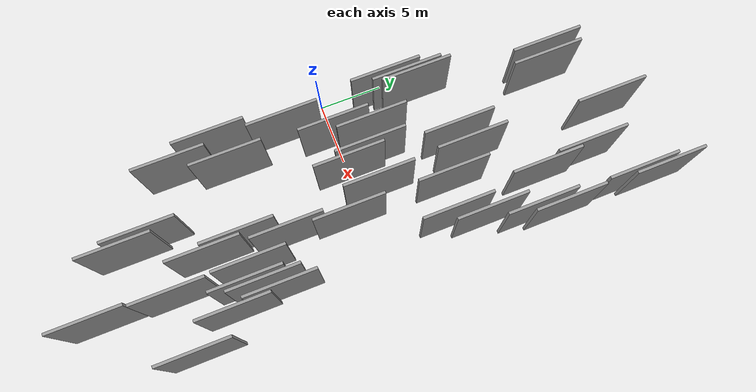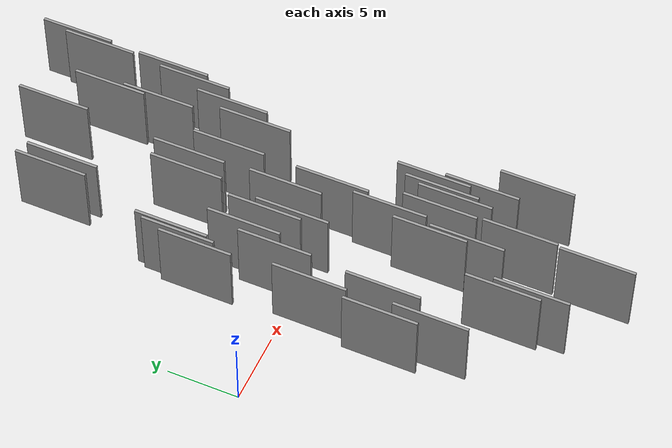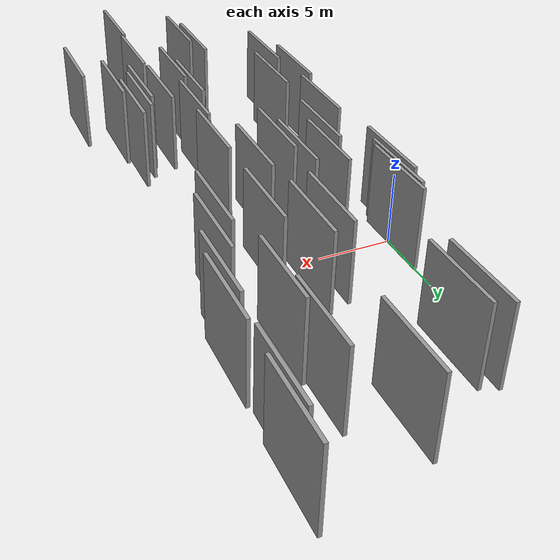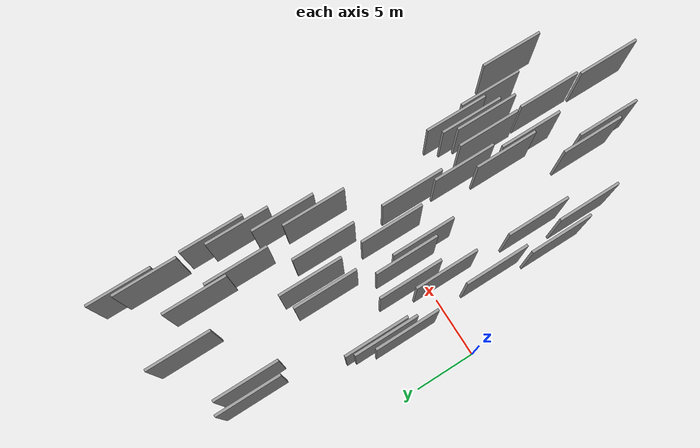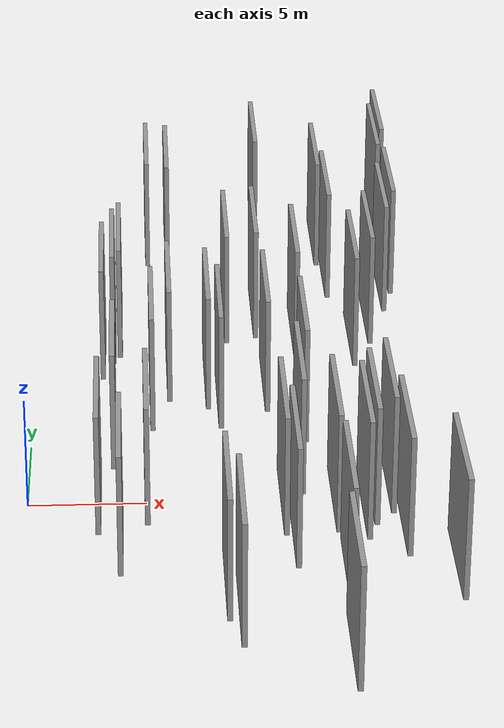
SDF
<sdf version="1.6">
 <world name="default">
  <scene>
   <sky><clouds><speed>12</speed></clouds></sky>
   <ambient>0.4 0.4 0.4 1</ambient>
   <background>0.7 0.7 0.7 1</background>
   <shadows>1</shadows>
  </scene>
  <gravity>0 0 -9.8066</gravity>
  <magnetic_field>6e-06 2.3e-05 -4.2e-05</magnetic_field>
  <physics default="0" name="default_physics" type="ode">
   <ode>
    <solver>
     <type>quick</type>
     <iters>10</iters>
     <sor>1.0</sor>
     <use_dynamic_moi_rescaling>0</use_dynamic_moi_rescaling>
    </solver>
    <constraints>
     <cfm>0</cfm>
     <erp>0.2</erp>
     <contact_max_correcting_vel>100</contact_max_correcting_vel>
     <contact_surface_layer>0.001</contact_surface_layer>
    </constraints>
   </ode>
   <max_step_size>0.004</max_step_size>
   <real_time_factor>1</real_time_factor>
   <real_time_update_rate>250</real_time_update_rate>
  </physics>
  <light name="sun" type="directional">
   <pose>0 0 10 0 0 0</pose>
   <diffuse>0.8 0.8 0.8 1</diffuse>
   <specular>0.2 0.2 0.2 1</specular>
   <attenuation>
    <range>1000</range>
    <constant>0.9</constant>
    <linear>0.01</linear>
    <quadratic>0.001</quadratic>
   </attenuation>
   <direction>-0.5 0.1 -0.9</direction>
  </light>
  <model name="grey_wall_1">
   <static>1</static>
   <pose>5.2941 -0.2255 5.0 0.000000 0.000000 1.570796</pose>
   <link name="link">
    <pose>0 0 2.50 0 0 0</pose>
    <collision name="collision"><geometry><box><size>5.00 0.2 5.00</size></box></geometry></collision>
    <visual name="visual">
     <cast_shadows>0</cast_shadows>
     <geometry><box><size>5.00 0.2 5.00</size></box></geometry>
     <material>
      <script>
       <uri>model://grey_wall/materials/scripts</uri>
       <uri>model://grey_wall/materials/textures</uri>
       <name>vrc/grey_wall</name>
      </script>
     </material>
    </visual>
   </link>
  </model>
  <model name="grey_wall_2">
   <static>1</static>
   <pose>13.7056 -7.9675 5.0 0.000000 0.000000 1.570796</pose>
   <link name="link">
    <pose>0 0 2.50 0 0 0</pose>
    <collision name="collision"><geometry><box><size>5.00 0.2 5.00</size></box></geometry></collision>
    <visual name="visual">
     <cast_shadows>0</cast_shadows>
     <geometry><box><size>5.00 0.2 5.00</size></box></geometry>
     <material>
      <script>
       <uri>model://grey_wall/materials/scripts</uri>
       <uri>model://grey_wall/materials/textures</uri>
       <name>vrc/grey_wall</name>
      </script>
     </material>
    </visual>
   </link>
  </model>
  <model name="grey_wall_3">
   <static>1</static>
   <pose>14.7441 7.1923 5.0 0.000000 0.000000 1.570796</pose>
   <link name="link">
    <pose>0 0 2.50 0 0 0</pose>
    <collision name="collision"><geometry><box><size>5.00 0.2 5.00</size></box></geometry></collision>
    <visual name="visual">
     <cast_shadows>0</cast_shadows>
     <geometry><box><size>5.00 0.2 5.00</size></box></geometry>
     <material>
      <script>
       <uri>model://grey_wall/materials/scripts</uri>
       <uri>model://grey_wall/materials/textures</uri>
       <name>vrc/grey_wall</name>
      </script>
     </material>
    </visual>
   </link>
  </model>
  <model name="grey_wall_4">
   <static>1</static>
   <pose>7.5985 1.5305 5.0 0.000000 0.000000 1.570796</pose>
   <link name="link">
    <pose>0 0 2.50 0 0 0</pose>
    <collision name="collision"><geometry><box><size>5.00 0.2 5.00</size></box></geometry></collision>
    <visual name="visual">
     <cast_shadows>0</cast_shadows>
     <geometry><box><size>5.00 0.2 5.00</size></box></geometry>
     <material>
      <script>
       <uri>model://grey_wall/materials/scripts</uri>
       <uri>model://grey_wall/materials/textures</uri>
       <name>vrc/grey_wall</name>
      </script>
     </material>
    </visual>
   </link>
  </model>
  <model name="grey_wall_5">
   <static>1</static>
   <pose>14.7294 -10.2809 5.0 0.000000 0.000000 1.570796</pose>
   <link name="link">
    <pose>0 0 2.50 0 0 0</pose>
    <collision name="collision"><geometry><box><size>5.00 0.2 5.00</size></box></geometry></collision>
    <visual name="visual">
     <cast_shadows>0</cast_shadows>
     <geometry><box><size>5.00 0.2 5.00</size></box></geometry>
     <material>
      <script>
       <uri>model://grey_wall/materials/scripts</uri>
       <uri>model://grey_wall/materials/textures</uri>
       <name>vrc/grey_wall</name>
      </script>
     </material>
    </visual>
   </link>
  </model>
  <model name="grey_wall_6">
   <static>1</static>
   <pose>3.2728 4.2991 5.0 0.000000 0.000000 1.570796</pose>
   <link name="link">
    <pose>0 0 2.50 0 0 0</pose>
    <collision name="collision"><geometry><box><size>5.00 0.2 5.00</size></box></geometry></collision>
    <visual name="visual">
     <cast_shadows>0</cast_shadows>
     <geometry><box><size>5.00 0.2 5.00</size></box></geometry>
     <material>
      <script>
       <uri>model://grey_wall/materials/scripts</uri>
       <uri>model://grey_wall/materials/textures</uri>
       <name>vrc/grey_wall</name>
      </script>
     </material>
    </visual>
   </link>
  </model>
  <model name="grey_wall_7">
   <static>1</static>
   <pose>10.5431 -10.9460 5.0 0.000000 0.000000 1.570796</pose>
   <link name="link">
    <pose>0 0 2.50 0 0 0</pose>
    <collision name="collision"><geometry><box><size>5.00 0.2 5.00</size></box></geometry></collision>
    <visual name="visual">
     <cast_shadows>0</cast_shadows>
     <geometry><box><size>5.00 0.2 5.00</size></box></geometry>
     <material>
      <script>
       <uri>model://grey_wall/materials/scripts</uri>
       <uri>model://grey_wall/materials/textures</uri>
       <name>vrc/grey_wall</name>
      </script>
     </material>
    </visual>
   </link>
  </model>
  <model name="grey_wall_8">
   <static>1</static>
   <pose>15.8792 17.4398 5.0 0.000000 0.000000 1.570796</pose>
   <link name="link">
    <pose>0 0 2.50 0 0 0</pose>
    <collision name="collision"><geometry><box><size>5.00 0.2 5.00</size></box></geometry></collision>
    <visual name="visual">
     <cast_shadows>0</cast_shadows>
     <geometry><box><size>5.00 0.2 5.00</size></box></geometry>
     <material>
      <script>
       <uri>model://grey_wall/materials/scripts</uri>
       <uri>model://grey_wall/materials/textures</uri>
       <name>vrc/grey_wall</name>
      </script>
     </material>
    </visual>
   </link>
  </model>
  <model name="grey_wall_9">
   <static>1</static>
   <pose>9.8408 7.9051 5.0 0.000000 0.000000 1.570796</pose>
   <link name="link">
    <pose>0 0 2.50 0 0 0</pose>
    <collision name="collision"><geometry><box><size>5.00 0.2 5.00</size></box></geometry></collision>
    <visual name="visual">
     <cast_shadows>0</cast_shadows>
     <geometry><box><size>5.00 0.2 5.00</size></box></geometry>
     <material>
      <script>
       <uri>model://grey_wall/materials/scripts</uri>
       <uri>model://grey_wall/materials/textures</uri>
       <name>vrc/grey_wall</name>
      </script>
     </material>
    </visual>
   </link>
  </model>
  <model name="grey_wall_10">
   <static>1</static>
   <pose>10.2322 -8.5907 5.0 0.000000 0.000000 1.570796</pose>
   <link name="link">
    <pose>0 0 2.50 0 0 0</pose>
    <collision name="collision"><geometry><box><size>5.00 0.2 5.00</size></box></geometry></collision>
    <visual name="visual">
     <cast_shadows>0</cast_shadows>
     <geometry><box><size>5.00 0.2 5.00</size></box></geometry>
     <material>
      <script>
       <uri>model://grey_wall/materials/scripts</uri>
       <uri>model://grey_wall/materials/textures</uri>
       <name>vrc/grey_wall</name>
      </script>
     </material>
    </visual>
   </link>
  </model>
  <model name="grey_wall_11">
   <static>1</static>
   <pose>3.1323 -8.2820 5.0 0.000000 0.000000 1.570796</pose>
   <link name="link">
    <pose>0 0 2.50 0 0 0</pose>
    <collision name="collision"><geometry><box><size>5.00 0.2 5.00</size></box></geometry></collision>
    <visual name="visual">
     <cast_shadows>0</cast_shadows>
     <geometry><box><size>5.00 0.2 5.00</size></box></geometry>
     <material>
      <script>
       <uri>model://grey_wall/materials/scripts</uri>
       <uri>model://grey_wall/materials/textures</uri>
       <name>vrc/grey_wall</name>
      </script>
     </material>
    </visual>
   </link>
  </model>
  <model name="grey_wall_12">
   <static>1</static>
   <pose>12.3308 -13.7963 5.0 0.000000 0.000000 1.570796</pose>
   <link name="link">
    <pose>0 0 2.50 0 0 0</pose>
    <collision name="collision"><geometry><box><size>5.00 0.2 5.00</size></box></geometry></collision>
    <visual name="visual">
     <cast_shadows>0</cast_shadows>
     <geometry><box><size>5.00 0.2 5.00</size></box></geometry>
     <material>
      <script>
       <uri>model://grey_wall/materials/scripts</uri>
       <uri>model://grey_wall/materials/textures</uri>
       <name>vrc/grey_wall</name>
      </script>
     </material>
    </visual>
   </link>
  </model>
  <model name="grey_wall_13">
   <static>1</static>
   <pose>6.1581 15.1049 5.0 0.000000 0.000000 1.570796</pose>
   <link name="link">
    <pose>0 0 2.50 0 0 0</pose>
    <collision name="collision"><geometry><box><size>5.00 0.2 5.00</size></box></geometry></collision>
    <visual name="visual">
     <cast_shadows>0</cast_shadows>
     <geometry><box><size>5.00 0.2 5.00</size></box></geometry>
     <material>
      <script>
       <uri>model://grey_wall/materials/scripts</uri>
       <uri>model://grey_wall/materials/textures</uri>
       <name>vrc/grey_wall</name>
      </script>
     </material>
    </visual>
   </link>
  </model>
  <model name="grey_wall_14">
   <static>1</static>
   <pose>11.4802 5.8726 5.0 0.000000 0.000000 1.570796</pose>
   <link name="link">
    <pose>0 0 2.50 0 0 0</pose>
    <collision name="collision"><geometry><box><size>5.00 0.2 5.00</size></box></geometry></collision>
    <visual name="visual">
     <cast_shadows>0</cast_shadows>
     <geometry><box><size>5.00 0.2 5.00</size></box></geometry>
     <material>
      <script>
       <uri>model://grey_wall/materials/scripts</uri>
       <uri>model://grey_wall/materials/textures</uri>
       <name>vrc/grey_wall</name>
      </script>
     </material>
    </visual>
   </link>
  </model>
  <model name="grey_wall_15">
   <static>1</static>
   <pose>3.9686 -11.2582 5.0 0.000000 0.000000 1.570796</pose>
   <link name="link">
    <pose>0 0 2.50 0 0 0</pose>
    <collision name="collision"><geometry><box><size>5.00 0.2 5.00</size></box></geometry></collision>
    <visual name="visual">
     <cast_shadows>0</cast_shadows>
     <geometry><box><size>5.00 0.2 5.00</size></box></geometry>
     <material>
      <script>
       <uri>model://grey_wall/materials/scripts</uri>
       <uri>model://grey_wall/materials/textures</uri>
       <name>vrc/grey_wall</name>
      </script>
     </material>
    </visual>
   </link>
  </model>
  <model name="grey_wall_16">
   <static>1</static>
   <pose>13.9199 5.1631 5.0 0.000000 0.000000 1.570796</pose>
   <link name="link">
    <pose>0 0 2.50 0 0 0</pose>
    <collision name="collision"><geometry><box><size>5.00 0.2 5.00</size></box></geometry></collision>
    <visual name="visual">
     <cast_shadows>0</cast_shadows>
     <geometry><box><size>5.00 0.2 5.00</size></box></geometry>
     <material>
      <script>
       <uri>model://grey_wall/materials/scripts</uri>
       <uri>model://grey_wall/materials/textures</uri>
       <name>vrc/grey_wall</name>
      </script>
     </material>
    </visual>
   </link>
  </model>
  <model name="grey_wall_17">
   <static>1</static>
   <pose>3.9886 6.2887 5.0 0.000000 0.000000 1.570796</pose>
   <link name="link">
    <pose>0 0 2.50 0 0 0</pose>
    <collision name="collision"><geometry><box><size>5.00 0.2 5.00</size></box></geometry></collision>
    <visual name="visual">
     <cast_shadows>0</cast_shadows>
     <geometry><box><size>5.00 0.2 5.00</size></box></geometry>
     <material>
      <script>
       <uri>model://grey_wall/materials/scripts</uri>
       <uri>model://grey_wall/materials/textures</uri>
       <name>vrc/grey_wall</name>
      </script>
     </material>
    </visual>
   </link>
  </model>
  <model name="grey_wall_18">
   <static>1</static>
   <pose>10.2752 17.9012 5.0 0.000000 0.000000 1.570796</pose>
   <link name="link">
    <pose>0 0 2.50 0 0 0</pose>
    <collision name="collision"><geometry><box><size>5.00 0.2 5.00</size></box></geometry></collision>
    <visual name="visual">
     <cast_shadows>0</cast_shadows>
     <geometry><box><size>5.00 0.2 5.00</size></box></geometry>
     <material>
      <script>
       <uri>model://grey_wall/materials/scripts</uri>
       <uri>model://grey_wall/materials/textures</uri>
       <name>vrc/grey_wall</name>
      </script>
     </material>
    </visual>
   </link>
  </model>
  <model name="grey_wall_19">
   <static>1</static>
   <pose>8.5793 7.4899 5.0 0.000000 0.000000 1.570796</pose>
   <link name="link">
    <pose>0 0 2.50 0 0 0</pose>
    <collision name="collision"><geometry><box><size>5.00 0.2 5.00</size></box></geometry></collision>
    <visual name="visual">
     <cast_shadows>0</cast_shadows>
     <geometry><box><size>5.00 0.2 5.00</size></box></geometry>
     <material>
      <script>
       <uri>model://grey_wall/materials/scripts</uri>
       <uri>model://grey_wall/materials/textures</uri>
       <name>vrc/grey_wall</name>
      </script>
     </material>
    </visual>
   </link>
  </model>
  <model name="grey_wall_20">
   <static>1</static>
   <pose>3.7101 5.6964 5.0 0.000000 0.000000 1.570796</pose>
   <link name="link">
    <pose>0 0 2.50 0 0 0</pose>
    <collision name="collision"><geometry><box><size>5.00 0.2 5.00</size></box></geometry></collision>
    <visual name="visual">
     <cast_shadows>0</cast_shadows>
     <geometry><box><size>5.00 0.2 5.00</size></box></geometry>
     <material>
      <script>
       <uri>model://grey_wall/materials/scripts</uri>
       <uri>model://grey_wall/materials/textures</uri>
       <name>vrc/grey_wall</name>
      </script>
     </material>
    </visual>
   </link>
  </model>
  <model name="grey_wall_21">
   <static>1</static>
   <pose>10.0108 1.2036 5.0 0.000000 0.000000 1.570796</pose>
   <link name="link">
    <pose>0 0 2.50 0 0 0</pose>
    <collision name="collision"><geometry><box><size>5.00 0.2 5.00</size></box></geometry></collision>
    <visual name="visual">
     <cast_shadows>0</cast_shadows>
     <geometry><box><size>5.00 0.2 5.00</size></box></geometry>
     <material>
      <script>
       <uri>model://grey_wall/materials/scripts</uri>
       <uri>model://grey_wall/materials/textures</uri>
       <name>vrc/grey_wall</name>
      </script>
     </material>
    </visual>
   </link>
  </model>
  <model name="grey_wall_22">
   <static>1</static>
   <pose>13.3355 -9.0173 5.0 0.000000 0.000000 1.570796</pose>
   <link name="link">
    <pose>0 0 2.50 0 0 0</pose>
    <collision name="collision"><geometry><box><size>5.00 0.2 5.00</size></box></geometry></collision>
    <visual name="visual">
     <cast_shadows>0</cast_shadows>
     <geometry><box><size>5.00 0.2 5.00</size></box></geometry>
     <material>
      <script>
       <uri>model://grey_wall/materials/scripts</uri>
       <uri>model://grey_wall/materials/textures</uri>
       <name>vrc/grey_wall</name>
      </script>
     </material>
    </visual>
   </link>
  </model>
  <model name="grey_wall_23">
   <static>1</static>
   <pose>16.4413 -13.3517 5.0 0.000000 0.000000 1.570796</pose>
   <link name="link">
    <pose>0 0 2.50 0 0 0</pose>
    <collision name="collision"><geometry><box><size>5.00 0.2 5.00</size></box></geometry></collision>
    <visual name="visual">
     <cast_shadows>0</cast_shadows>
     <geometry><box><size>5.00 0.2 5.00</size></box></geometry>
     <material>
      <script>
       <uri>model://grey_wall/materials/scripts</uri>
       <uri>model://grey_wall/materials/textures</uri>
       <name>vrc/grey_wall</name>
      </script>
     </material>
    </visual>
   </link>
  </model>
  <model name="grey_wall_24">
   <static>1</static>
   <pose>8.3003 -16.1279 5.0 0.000000 0.000000 1.570796</pose>
   <link name="link">
    <pose>0 0 2.50 0 0 0</pose>
    <collision name="collision"><geometry><box><size>5.00 0.2 5.00</size></box></geometry></collision>
    <visual name="visual">
     <cast_shadows>0</cast_shadows>
     <geometry><box><size>5.00 0.2 5.00</size></box></geometry>
     <material>
      <script>
       <uri>model://grey_wall/materials/scripts</uri>
       <uri>model://grey_wall/materials/textures</uri>
       <name>vrc/grey_wall</name>
      </script>
     </material>
    </visual>
   </link>
  </model>
  <model name="grey_wall_25">
   <static>1</static>
   <pose>16.0839 12.1166 5.0 0.000000 0.000000 1.570796</pose>
   <link name="link">
    <pose>0 0 2.50 0 0 0</pose>
    <collision name="collision"><geometry><box><size>5.00 0.2 5.00</size></box></geometry></collision>
    <visual name="visual">
     <cast_shadows>0</cast_shadows>
     <geometry><box><size>5.00 0.2 5.00</size></box></geometry>
     <material>
      <script>
       <uri>model://grey_wall/materials/scripts</uri>
       <uri>model://grey_wall/materials/textures</uri>
       <name>vrc/grey_wall</name>
      </script>
     </material>
    </visual>
   </link>
  </model>
  <model name="grey_wall_26">
   <static>1</static>
   <pose>13.2229 11.7885 5.0 0.000000 0.000000 1.570796</pose>
   <link name="link">
    <pose>0 0 2.50 0 0 0</pose>
    <collision name="collision"><geometry><box><size>5.00 0.2 5.00</size></box></geometry></collision>
    <visual name="visual">
     <cast_shadows>0</cast_shadows>
     <geometry><box><size>5.00 0.2 5.00</size></box></geometry>
     <material>
      <script>
       <uri>model://grey_wall/materials/scripts</uri>
       <uri>model://grey_wall/materials/textures</uri>
       <name>vrc/grey_wall</name>
      </script>
     </material>
    </visual>
   </link>
  </model>
  <model name="grey_wall_27">
   <static>1</static>
   <pose>11.0300 -5.5324 5.0 0.000000 0.000000 1.570796</pose>
   <link name="link">
    <pose>0 0 2.50 0 0 0</pose>
    <collision name="collision"><geometry><box><size>5.00 0.2 5.00</size></box></geometry></collision>
    <visual name="visual">
     <cast_shadows>0</cast_shadows>
     <geometry><box><size>5.00 0.2 5.00</size></box></geometry>
     <material>
      <script>
       <uri>model://grey_wall/materials/scripts</uri>
       <uri>model://grey_wall/materials/textures</uri>
       <name>vrc/grey_wall</name>
      </script>
     </material>
    </visual>
   </link>
  </model>
  <model name="grey_wall_28">
   <static>1</static>
   <pose>5.2587 15.4548 5.0 0.000000 0.000000 1.570796</pose>
   <link name="link">
    <pose>0 0 2.50 0 0 0</pose>
    <collision name="collision"><geometry><box><size>5.00 0.2 5.00</size></box></geometry></collision>
    <visual name="visual">
     <cast_shadows>0</cast_shadows>
     <geometry><box><size>5.00 0.2 5.00</size></box></geometry>
     <material>
      <script>
       <uri>model://grey_wall/materials/scripts</uri>
       <uri>model://grey_wall/materials/textures</uri>
       <name>vrc/grey_wall</name>
      </script>
     </material>
    </visual>
   </link>
  </model>
  <model name="grey_wall_29">
   <static>1</static>
   <pose>15.6280 10.3433 5.0 0.000000 0.000000 1.570796</pose>
   <link name="link">
    <pose>0 0 2.50 0 0 0</pose>
    <collision name="collision"><geometry><box><size>5.00 0.2 5.00</size></box></geometry></collision>
    <visual name="visual">
     <cast_shadows>0</cast_shadows>
     <geometry><box><size>5.00 0.2 5.00</size></box></geometry>
     <material>
      <script>
       <uri>model://grey_wall/materials/scripts</uri>
       <uri>model://grey_wall/materials/textures</uri>
       <name>vrc/grey_wall</name>
      </script>
     </material>
    </visual>
   </link>
  </model>
  <model name="grey_wall_30">
   <static>1</static>
   <pose>8.0651 -0.1510 5.0 0.000000 0.000000 1.570796</pose>
   <link name="link">
    <pose>0 0 2.50 0 0 0</pose>
    <collision name="collision"><geometry><box><size>5.00 0.2 5.00</size></box></geometry></collision>
    <visual name="visual">
     <cast_shadows>0</cast_shadows>
     <geometry><box><size>5.00 0.2 5.00</size></box></geometry>
     <material>
      <script>
       <uri>model://grey_wall/materials/scripts</uri>
       <uri>model://grey_wall/materials/textures</uri>
       <name>vrc/grey_wall</name>
      </script>
     </material>
    </visual>
   </link>
  </model>
  <model name="grey_wall_31">
   <static>1</static>
   <pose>12.2216 -8.4413 5.0 0.000000 0.000000 1.570796</pose>
   <link name="link">
    <pose>0 0 2.50 0 0 0</pose>
    <collision name="collision"><geometry><box><size>5.00 0.2 5.00</size></box></geometry></collision>
    <visual name="visual">
     <cast_shadows>0</cast_shadows>
     <geometry><box><size>5.00 0.2 5.00</size></box></geometry>
     <material>
      <script>
       <uri>model://grey_wall/materials/scripts</uri>
       <uri>model://grey_wall/materials/textures</uri>
       <name>vrc/grey_wall</name>
      </script>
     </material>
    </visual>
   </link>
  </model>
  <model name="grey_wall_32">
   <static>1</static>
   <pose>5.0028 -7.6747 5.0 0.000000 0.000000 1.570796</pose>
   <link name="link">
    <pose>0 0 2.50 0 0 0</pose>
    <collision name="collision"><geometry><box><size>5.00 0.2 5.00</size></box></geometry></collision>
    <visual name="visual">
     <cast_shadows>0</cast_shadows>
     <geometry><box><size>5.00 0.2 5.00</size></box></geometry>
     <material>
      <script>
       <uri>model://grey_wall/materials/scripts</uri>
       <uri>model://grey_wall/materials/textures</uri>
       <name>vrc/grey_wall</name>
      </script>
     </material>
    </visual>
   </link>
  </model>
  <model name="grey_wall_33">
   <static>1</static>
   <pose>7.8642 -14.4185 5.0 0.000000 0.000000 1.570796</pose>
   <link name="link">
    <pose>0 0 2.50 0 0 0</pose>
    <collision name="collision"><geometry><box><size>5.00 0.2 5.00</size></box></geometry></collision>
    <visual name="visual">
     <cast_shadows>0</cast_shadows>
     <geometry><box><size>5.00 0.2 5.00</size></box></geometry>
     <material>
      <script>
       <uri>model://grey_wall/materials/scripts</uri>
       <uri>model://grey_wall/materials/textures</uri>
       <name>vrc/grey_wall</name>
      </script>
     </material>
    </visual>
   </link>
  </model>
  <model name="grey_wall_34">
   <static>1</static>
   <pose>6.0273 2.2329 5.0 0.000000 0.000000 1.570796</pose>
   <link name="link">
    <pose>0 0 2.50 0 0 0</pose>
    <collision name="collision"><geometry><box><size>5.00 0.2 5.00</size></box></geometry></collision>
    <visual name="visual">
     <cast_shadows>0</cast_shadows>
     <geometry><box><size>5.00 0.2 5.00</size></box></geometry>
     <material>
      <script>
       <uri>model://grey_wall/materials/scripts</uri>
       <uri>model://grey_wall/materials/textures</uri>
       <name>vrc/grey_wall</name>
      </script>
     </material>
    </visual>
   </link>
  </model>
  <model name="grey_wall_35">
   <static>1</static>
   <pose>3.7166 -3.3059 5.0 0.000000 0.000000 1.570796</pose>
   <link name="link">
    <pose>0 0 2.50 0 0 0</pose>
    <collision name="collision"><geometry><box><size>5.00 0.2 5.00</size></box></geometry></collision>
    <visual name="visual">
     <cast_shadows>0</cast_shadows>
     <geometry><box><size>5.00 0.2 5.00</size></box></geometry>
     <material>
      <script>
       <uri>model://grey_wall/materials/scripts</uri>
       <uri>model://grey_wall/materials/textures</uri>
       <name>vrc/grey_wall</name>
      </script>
     </material>
    </visual>
   </link>
  </model>
  <model name="grey_wall_36">
   <static>1</static>
   <pose>12.9621 15.1709 5.0 0.000000 0.000000 1.570796</pose>
   <link name="link">
    <pose>0 0 2.50 0 0 0</pose>
    <collision name="collision"><geometry><box><size>5.00 0.2 5.00</size></box></geometry></collision>
    <visual name="visual">
     <cast_shadows>0</cast_shadows>
     <geometry><box><size>5.00 0.2 5.00</size></box></geometry>
     <material>
      <script>
       <uri>model://grey_wall/materials/scripts</uri>
       <uri>model://grey_wall/materials/textures</uri>
       <name>vrc/grey_wall</name>
      </script>
     </material>
    </visual>
   </link>
  </model>
  <model name="grey_wall_37">
   <static>1</static>
   <pose>11.4207 -1.4011 5.0 0.000000 0.000000 1.570796</pose>
   <link name="link">
    <pose>0 0 2.50 0 0 0</pose>
    <collision name="collision"><geometry><box><size>5.00 0.2 5.00</size></box></geometry></collision>
    <visual name="visual">
     <cast_shadows>0</cast_shadows>
     <geometry><box><size>5.00 0.2 5.00</size></box></geometry>
     <material>
      <script>
       <uri>model://grey_wall/materials/scripts</uri>
       <uri>model://grey_wall/materials/textures</uri>
       <name>vrc/grey_wall</name>
      </script>
     </material>
    </visual>
   </link>
  </model>
  <model name="grey_wall_38">
   <static>1</static>
   <pose>14.4159 -7.1150 5.0 0.000000 0.000000 1.570796</pose>
   <link name="link">
    <pose>0 0 2.50 0 0 0</pose>
    <collision name="collision"><geometry><box><size>5.00 0.2 5.00</size></box></geometry></collision>
    <visual name="visual">
     <cast_shadows>0</cast_shadows>
     <geometry><box><size>5.00 0.2 5.00</size></box></geometry>
     <material>
      <script>
       <uri>model://grey_wall/materials/scripts</uri>
       <uri>model://grey_wall/materials/textures</uri>
       <name>vrc/grey_wall</name>
      </script>
     </material>
    </visual>
   </link>
  </model>
  <model name="grey_wall_39">
   <static>1</static>
   <pose>12.1503 -18.9803 5.0 0.000000 0.000000 1.570796</pose>
   <link name="link">
    <pose>0 0 2.50 0 0 0</pose>
    <collision name="collision"><geometry><box><size>5.00 0.2 5.00</size></box></geometry></collision>
    <visual name="visual">
     <cast_shadows>0</cast_shadows>
     <geometry><box><size>5.00 0.2 5.00</size></box></geometry>
     <material>
      <script>
       <uri>model://grey_wall/materials/scripts</uri>
       <uri>model://grey_wall/materials/textures</uri>
       <name>vrc/grey_wall</name>
      </script>
     </material>
    </visual>
   </link>
  </model>
  <model name="grey_wall_40">
   <static>1</static>
   <pose>16.2023 19.2426 5.0 0.000000 0.000000 1.570796</pose>
   <link name="link">
    <pose>0 0 2.50 0 0 0</pose>
    <collision name="collision"><geometry><box><size>5.00 0.2 5.00</size></box></geometry></collision>
    <visual name="visual">
     <cast_shadows>0</cast_shadows>
     <geometry><box><size>5.00 0.2 5.00</size></box></geometry>
     <material>
      <script>
       <uri>model://grey_wall/materials/scripts</uri>
       <uri>model://grey_wall/materials/textures</uri>
       <name>vrc/grey_wall</name>
      </script>
     </material>
    </visual>
   </link>
  </model>
 </world>
</sdf>
